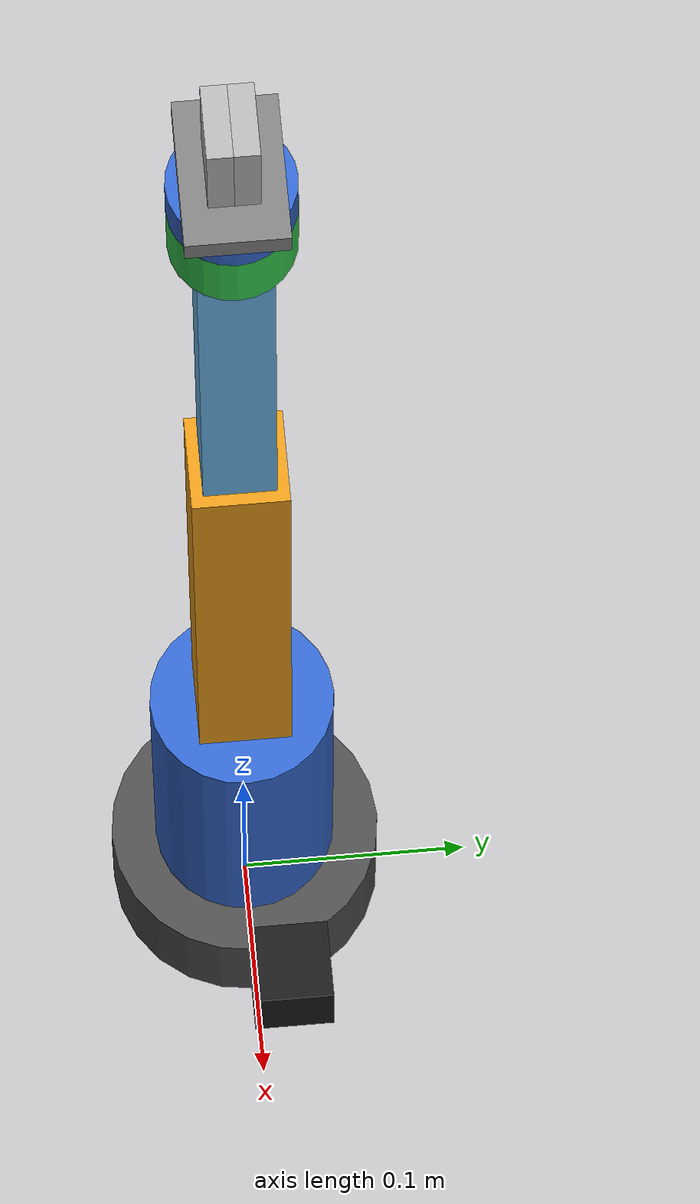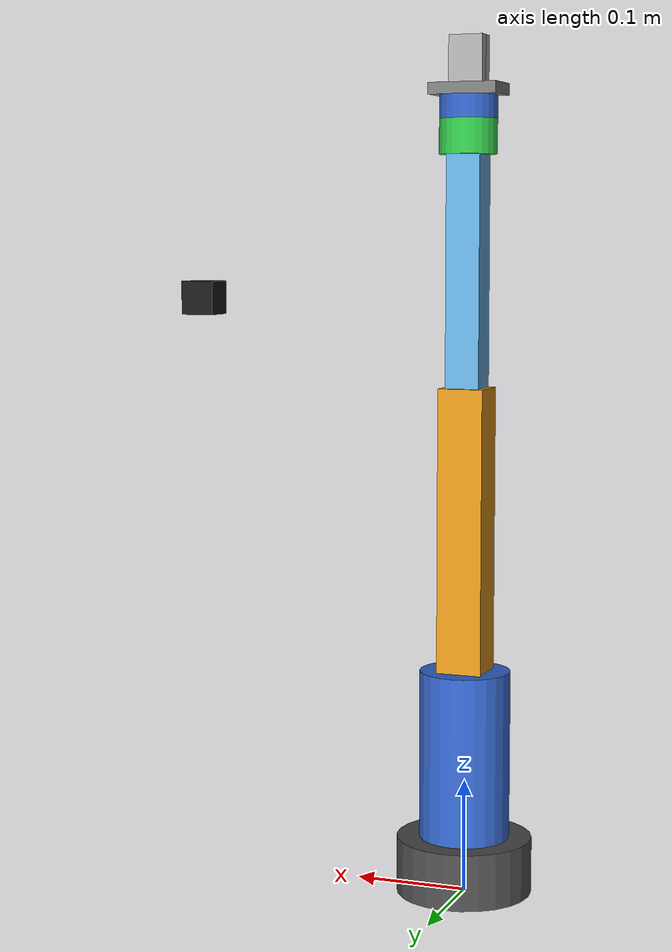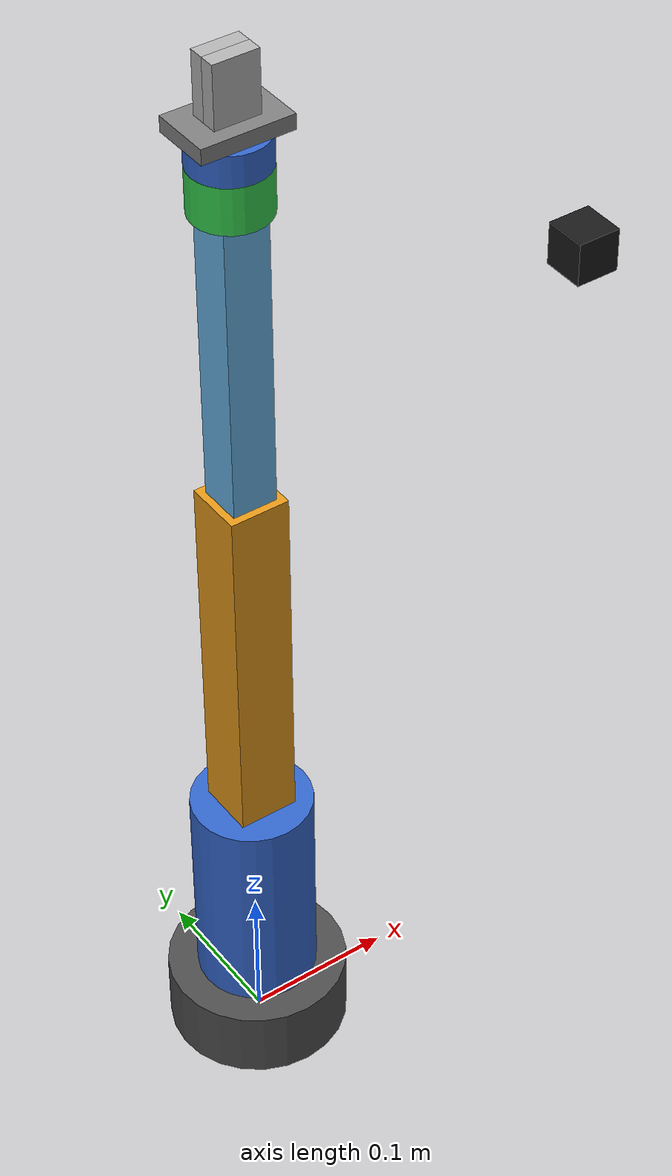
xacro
<?xml version="1.0"?>
<robot xmlns:xacro="http://www.ros.org/wiki/xacro" name="robot_5dof">

  <!-- ===================== PROPERTIES ===================== -->
  <!-- Base -->
  <xacro:property name="base_radius" value="0.06"/>
  <xacro:property name="base_height" value="0.05"/>
  <xacro:property name="base_mass" value="2.0"/>

  <!-- Link1 - Turret -->
  <xacro:property name="link1_radius" value="0.04"/>
  <xacro:property name="link1_height" value="0.15"/>
  <xacro:property name="link1_mass" value="1.0"/>

  <!-- Link2 - Upper arm -->
  <xacro:property name="link2_width" value="0.04"/>
  <xacro:property name="link2_depth" value="0.04"/>
  <xacro:property name="link2_length" value="0.25"/>
  <xacro:property name="link2_mass" value="0.8"/>

  <!-- Link3 - Forearm -->
  <xacro:property name="link3_width" value="0.03"/>
  <xacro:property name="link3_depth" value="0.03"/>
  <xacro:property name="link3_length" value="0.20"/>
  <xacro:property name="link3_mass" value="0.5"/>

  <!-- Link4 - Wrist (new 4th DOF: wrist pitch around Y) -->
  <xacro:property name="link4_radius" value="0.025"/>
  <xacro:property name="link4_height" value="0.03"/>
  <xacro:property name="link4_mass" value="0.15"/>

  <!-- Link5 - Wrist Roll (new 5th DOF: wrist roll around Z) -->
  <xacro:property name="link5_radius" value="0.025"/>
  <xacro:property name="link5_height" value="0.02"/>
  <xacro:property name="link5_mass" value="0.1"/>

  <!-- Gripper -->
  <xacro:property name="gripper_base_x" value="0.06"/>
  <xacro:property name="gripper_base_y" value="0.04"/>
  <xacro:property name="gripper_base_z" value="0.01"/>
  <xacro:property name="gripper_base_mass" value="0.1"/>

  <xacro:property name="finger_x" value="0.03"/>
  <xacro:property name="finger_y" value="0.01"/>
  <xacro:property name="finger_z" value="0.04"/>
  <xacro:property name="finger_mass" value="0.05"/>

  <!-- Camera -->
  <xacro:property name="camera_size" value="0.03"/>
  <xacro:property name="camera_mass" value="0.05"/>

  <!-- ===================== INERTIA MACROS ===================== -->
  <xacro:macro name="cylinder_inertia" params="m r h">
    <inertial>
      <mass value="${m}"/>
      <inertia ixx="${(1.0/12.0)*m*(3*r*r+h*h)}" ixy="0" ixz="0"
               iyy="${(1.0/12.0)*m*(3*r*r+h*h)}" iyz="0"
               izz="${0.5*m*r*r}"/>
    </inertial>
  </xacro:macro>

  <xacro:macro name="box_inertia" params="m x y z">
    <inertial>
      <mass value="${m}"/>
      <inertia ixx="${(1.0/12.0)*m*(y*y+z*z)}" ixy="0" ixz="0"
               iyy="${(1.0/12.0)*m*(x*x+z*z)}" iyz="0"
               izz="${(1.0/12.0)*m*(x*x+y*y)}"/>
    </inertial>
  </xacro:macro>

  <!-- ===================== LINKS & JOINTS ===================== -->

  <!-- World link (for fixed base) -->
  <link name="world"/>

  <!-- Base Link -->
  <joint name="world_to_base" type="fixed">
    <parent link="world"/>
    <child link="base_link"/>
    <origin xyz="0 0 ${base_height/2}" rpy="0 0 0"/>
  </joint>

  <link name="base_link">
    <xacro:cylinder_inertia m="${base_mass}" r="${base_radius}" h="${base_height}"/>
    <visual>
      <geometry>
        <cylinder radius="${base_radius}" length="${base_height}"/>
      </geometry>
      <material name="dark_grey">
        <color rgba="0.3 0.3 0.3 1.0"/>
      </material>
    </visual>
    <collision>
      <geometry>
        <cylinder radius="${base_radius}" length="${base_height}"/>
      </geometry>
    </collision>
  </link>

  <!-- Link1 - Turret (rotates around Z) -->
  <joint name="joint1" type="revolute">
    <parent link="base_link"/>
    <child link="link1"/>
    <origin xyz="0 0 ${base_height/2}" rpy="0 0 0"/>
    <axis xyz="0 0 1"/>
    <limit lower="${-pi}" upper="${pi}" velocity="2.0" effort="50.0"/>
    <dynamics damping="0.5" friction="0.1"/>
  </joint>

  <link name="link1">
    <xacro:cylinder_inertia m="${link1_mass}" r="${link1_radius}" h="${link1_height}"/>
    <visual>
      <origin xyz="0 0 ${link1_height/2}" rpy="0 0 0"/>
      <geometry>
        <cylinder radius="${link1_radius}" length="${link1_height}"/>
      </geometry>
      <material name="blue">
        <color rgba="0.2 0.4 0.8 1.0"/>
      </material>
    </visual>
    <collision>
      <origin xyz="0 0 ${link1_height/2}" rpy="0 0 0"/>
      <geometry>
        <cylinder radius="${link1_radius}" length="${link1_height}"/>
      </geometry>
    </collision>
  </link>

  <!-- Link2 - Upper arm (rotates around Y) -->
  <joint name="joint2" type="revolute">
    <parent link="link1"/>
    <child link="link2"/>
    <origin xyz="0 0 ${link1_height}" rpy="0 0 0"/>
    <axis xyz="0 1 0"/>
    <limit lower="-2.5" upper="2.5" velocity="2.0" effort="50.0"/>
    <dynamics damping="0.5" friction="0.1"/>
  </joint>

  <link name="link2">
    <xacro:box_inertia m="${link2_mass}" x="${link2_width}" y="${link2_depth}" z="${link2_length}"/>
    <visual>
      <origin xyz="0 0 ${link2_length/2}" rpy="0 0 0"/>
      <geometry>
        <box size="${link2_width} ${link2_depth} ${link2_length}"/>
      </geometry>
      <material name="orange">
        <color rgba="0.9 0.6 0.1 1.0"/>
      </material>
    </visual>
    <collision>
      <origin xyz="0 0 ${link2_length/2}" rpy="0 0 0"/>
      <geometry>
        <box size="${link2_width} ${link2_depth} ${link2_length}"/>
      </geometry>
    </collision>
  </link>

  <!-- Link3 - Forearm (rotates around Y) -->
  <joint name="joint3" type="revolute">
    <parent link="link2"/>
    <child link="link3"/>
    <origin xyz="0 0 ${link2_length}" rpy="0 0 0"/>
    <axis xyz="0 1 0"/>
    <limit lower="-2.5" upper="2.5" velocity="2.0" effort="50.0"/>
    <dynamics damping="0.3" friction="0.1"/>
  </joint>

  <link name="link3">
    <xacro:box_inertia m="${link3_mass}" x="${link3_width}" y="${link3_depth}" z="${link3_length}"/>
    <visual>
      <origin xyz="0 0 ${link3_length/2}" rpy="0 0 0"/>
      <geometry>
        <box size="${link3_width} ${link3_depth} ${link3_length}"/>
      </geometry>
      <material name="light_blue">
        <color rgba="0.4 0.7 0.9 1.0"/>
      </material>
    </visual>
    <collision>
      <origin xyz="0 0 ${link3_length/2}" rpy="0 0 0"/>
      <geometry>
        <box size="${link3_width} ${link3_depth} ${link3_length}"/>
      </geometry>
    </collision>
  </link>

  <!-- Link4 - Wrist (4th DOF: rotates around Y for wrist pitch) -->
  <joint name="joint4" type="revolute">
    <parent link="link3"/>
    <child link="link4"/>
    <origin xyz="0 0 ${link3_length}" rpy="0 0 0"/>
    <axis xyz="0 1 0"/>
    <limit lower="-2.2" upper="2.2" velocity="3.0" effort="20.0"/>
    <dynamics damping="0.2" friction="0.05"/>
  </joint>

  <link name="link4">
    <xacro:cylinder_inertia m="${link4_mass}" r="${link4_radius}" h="${link4_height}"/>
    <visual>
      <origin xyz="0 0 ${link4_height/2}" rpy="0 0 0"/>
      <geometry>
        <cylinder radius="${link4_radius}" length="${link4_height}"/>
      </geometry>
      <material name="green">
        <color rgba="0.2 0.8 0.3 1.0"/>
      </material>
    </visual>
    <collision>
      <origin xyz="0 0 ${link4_height/2}" rpy="0 0 0"/>
      <geometry>
        <cylinder radius="${link4_radius}" length="${link4_height}"/>
      </geometry>
    </collision>
  </link>

  <joint name="joint5" type="revolute">
    <parent link="link4"/>
    <child link="link5"/>
    <origin xyz="0 0 ${link4_height}" rpy="0 0 0"/>
    <axis xyz="0 0 1"/>
    <limit lower="${-pi/2}" upper="${pi/2}" velocity="3.0" effort="20.0"/>
    <dynamics damping="0.1" friction="0.05"/>
  </joint>

  <link name="link5">
    <xacro:cylinder_inertia m="${link5_mass}" r="${link5_radius}" h="${link5_height}"/>
    <visual>
      <origin xyz="0 0 ${link5_height/2}" rpy="0 0 0"/>
      <geometry>
        <cylinder radius="${link5_radius}" length="${link5_height}"/>
      </geometry>
      <material name="blue">
        <color rgba="0.2 0.4 0.8 1.0"/>
      </material>
    </visual>
    <collision>
      <origin xyz="0 0 ${link5_height/2}" rpy="0 0 0"/>
      <geometry>
        <cylinder radius="${link5_radius}" length="${link5_height}"/>
      </geometry>
    </collision>
  </link>

  <!-- End Effector (reference frame at the tip of wrist link4) -->
  <joint name="end_effector_joint" type="fixed">
    <parent link="link5"/>
    <child link="end_effector_link"/>
    <origin xyz="0 0 ${link5_height}" rpy="0 0 0"/>
  </joint>

  <link name="end_effector_link"/>

  <!-- ===================== GRIPPER ===================== -->

  <!-- Gripper base (sits right at the end of link4/wrist) -->
  <joint name="gripper_base_joint" type="fixed">
    <parent link="end_effector_link"/>
    <child link="gripper_base_link"/>
    <origin xyz="0 0 ${gripper_base_z/2}" rpy="0 0 0"/>
  </joint>

  <link name="gripper_base_link">
    <xacro:box_inertia m="${gripper_base_mass}" x="${gripper_base_x}" y="${gripper_base_y}" z="${gripper_base_z}"/>
    <visual>
      <geometry>
        <box size="${gripper_base_x} ${gripper_base_y} ${gripper_base_z}"/>
      </geometry>
      <material name="grey">
        <color rgba="0.5 0.5 0.5 1.0"/>
      </material>
    </visual>
    <collision>
      <geometry>
        <box size="${gripper_base_x} ${gripper_base_y} ${gripper_base_z}"/>
      </geometry>
    </collision>
  </link>

  <!-- Left finger (prismatic along Y, opens outward +Y, extends in +Z) -->
  <joint name="gripper_left_joint" type="prismatic">
    <parent link="gripper_base_link"/>
    <child link="finger_left_link"/>
    <origin xyz="0 ${finger_y/2} ${gripper_base_z/2 + finger_z/2}" rpy="0 0 0"/>
    <axis xyz="0 1 0"/>
    <limit lower="0.0" upper="0.035" velocity="0.5" effort="20.0"/>
    <dynamics damping="0.1"/>
  </joint>

  <link name="finger_left_link">
    <xacro:box_inertia m="${finger_mass}" x="${finger_x}" y="${finger_y}" z="${finger_z}"/>
    <visual>
      <geometry>
        <box size="${finger_x} ${finger_y} ${finger_z}"/>
      </geometry>
      <material name="light_grey">
        <color rgba="0.7 0.7 0.7 1.0"/>
      </material>
    </visual>
    <collision>
      <geometry>
        <box size="${finger_x} ${finger_y} ${finger_z}"/>
      </geometry>
    </collision>
  </link>

  <!-- Right finger (mimic of left, moves in -Y, extends in +Z) -->
  <joint name="gripper_right_joint" type="prismatic">
    <parent link="gripper_base_link"/>
    <child link="finger_right_link"/>
    <origin xyz="0 ${-finger_y/2} ${gripper_base_z/2 + finger_z/2}" rpy="0 0 0"/>
    <axis xyz="0 1 0"/>
    <limit lower="-0.035" upper="0.0" velocity="0.5" effort="20.0"/>
    <mimic joint="gripper_left_joint" multiplier="-1" offset="0"/>
    <dynamics damping="0.1"/>
  </joint>

  <link name="finger_right_link">
    <xacro:box_inertia m="${finger_mass}" x="${finger_x}" y="${finger_y}" z="${finger_z}"/>
    <visual>
      <geometry>
        <box size="${finger_x} ${finger_y} ${finger_z}"/>
      </geometry>
      <material name="light_grey">
        <color rgba="0.7 0.7 0.7 1.0"/>
      </material>
    </visual>
    <collision>
      <geometry>
        <box size="${finger_x} ${finger_y} ${finger_z}"/>
      </geometry>
    </collision>
  </link>

  <!-- Grasp Center (virtual reference frame located at the center of the finger pads) -->
  <joint name="grasp_joint" type="fixed">
    <parent link="end_effector_link"/>
    <child link="grasp_link"/>
    <origin xyz="0 0 ${gripper_base_z + finger_z/2}" rpy="0 0 0"/>
  </joint>
  <link name="grasp_link"/>

  <!-- ===================== CAMERA ===================== -->

  <!-- Camera mount (fixed overhead, looking straight down) -->
  <joint name="camera_joint" type="fixed">
    <parent link="base_link"/>
    <child link="camera_link"/>
    <origin xyz="0.25 0.0 0.50" rpy="0 ${pi/2} 0"/>
  </joint>

  <link name="camera_link">
    <xacro:box_inertia m="${camera_mass}" x="${camera_size}" y="${camera_size}" z="${camera_size}"/>
    <visual>
      <geometry>
        <box size="${camera_size} ${camera_size} ${camera_size}"/>
      </geometry>
      <material name="black">
        <color rgba="0.1 0.1 0.1 1.0"/>
      </material>
    </visual>
    <collision>
      <geometry>
        <box size="${camera_size} ${camera_size} ${camera_size}"/>
      </geometry>
    </collision>
  </link>

  <!-- Camera optical frame (Z forward, X right, Y down) -->
  <joint name="camera_optical_joint" type="fixed">
    <parent link="camera_link"/>
    <child link="camera_optical_link"/>
    <origin xyz="0 0 0" rpy="${-pi/2} 0 ${-pi/2}"/>
  </joint>

  <link name="camera_optical_link"/>

  <!-- ===================== INCLUDE ros2_control + Gazebo ===================== -->
  <xacro:include filename="$(find robot_5dof)/urdf/robot_5dof_ros2_control.xacro"/>
  <xacro:include filename="$(find robot_5dof)/urdf/robot_5dof_gazebo.xacro"/>

</robot>
